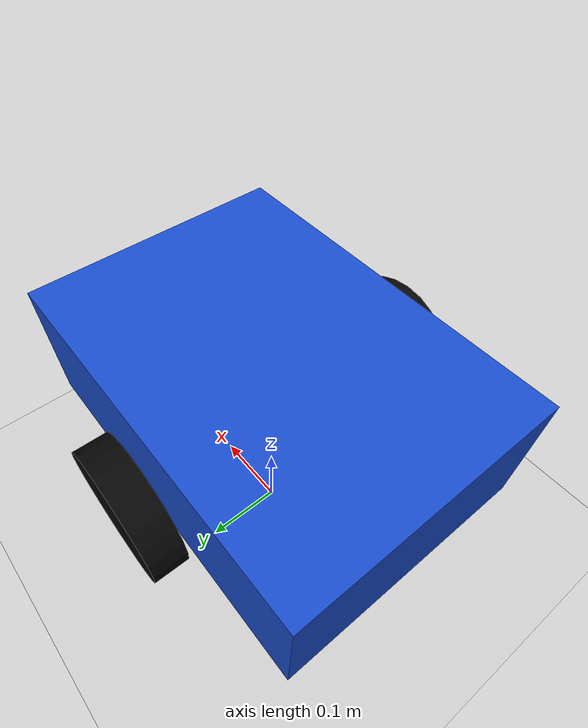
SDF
<?xml version="1.0"?>
<sdf version="1.6">
  <world name="robot_world">
    <include>
      <uri>model://sun</uri>
    </include>

    <include>
      <uri>model://ground_plane</uri>
    </include>

    <physics name="default_physics" type="ode">
      <max_step_size>0.001</max_step_size>
      <real_time_update_rate>1000</real_time_update_rate>
      <real_time_factor>1.0</real_time_factor>
    </physics>

    <gravity>0 0 -9.8</gravity>
    <magnetic_field>6.0e-6 2.3e-5 -4.2e-5</magnetic_field>
    <atmosphere type="adiabatic"/>

    <include>
      <uri>model://diff_drive_robot</uri>
      <name>diff_drive_robot</name>
      <pose>0 0 0.12 0 0 0</pose>
    </include>
  </world>
</sdf>

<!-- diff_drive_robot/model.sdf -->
<sdf version="1.6">
  <model name="diff_drive_robot">
    <static>false</static>

    <link name="base_link">
      <pose>0 0 0.12 0 0 0</pose>
      <inertial>
        <mass>5.0</mass>
        <inertia>
          <ixx>0.08</ixx>
          <ixy>0.0</ixy>
          <ixz>0.0</ixz>
          <iyy>0.10</iyy>
          <iyz>0.0</iyz>
          <izz>0.12</izz>
        </inertia>
      </inertial>
      <collision name="base_collision">
        <geometry>
          <box>
            <size>0.45 0.32 0.16</size>
          </box>
        </geometry>
      </collision>
      <visual name="base_visual">
        <geometry>
          <box>
            <size>0.45 0.32 0.16</size>
          </box>
        </geometry>
        <material>
          <ambient>0.1 0.3 0.8 1</ambient>
          <diffuse>0.1 0.3 0.8 1</diffuse>
        </material>
      </visual>
    </link>

    <link name="imu_link">
      <pose>0 0 0.23 0 0 0</pose>
      <inertial>
        <mass>0.05</mass>
        <inertia>
          <ixx>0.0001</ixx>
          <ixy>0.0</ixy>
          <ixz>0.0</ixz>
          <iyy>0.0001</iyy>
          <iyz>0.0</iyz>
          <izz>0.0001</izz>
        </inertia>
      </inertial>
      <sensor name="imu_sensor" type="imu">
        <always_on>true</always_on>
        <update_rate>100</update_rate>
        <topic>/gazebo/imu_data</topic>
        <imu>
          <angular_velocity>
            <x>
              <noise type="gaussian">
                <mean>0.0</mean>
                <stddev>0.0002</stddev>
              </noise>
            </x>
            <y>
              <noise type="gaussian">
                <mean>0.0</mean>
                <stddev>0.0002</stddev>
              </noise>
            </y>
            <z>
              <noise type="gaussian">
                <mean>0.0</mean>
                <stddev>0.0005</stddev>
              </noise>
            </z>
          </angular_velocity>
          <linear_acceleration>
            <x>
              <noise type="gaussian">
                <mean>0.0</mean>
                <stddev>0.01</stddev>
              </noise>
            </x>
            <y>
              <noise type="gaussian">
                <mean>0.0</mean>
                <stddev>0.01</stddev>
              </noise>
            </y>
            <z>
              <noise type="gaussian">
                <mean>0.0</mean>
                <stddev>0.01</stddev>
              </noise>
            </z>
          </linear_acceleration>
        </imu>
        <plugin name="imu_plugin" filename="libgazebo_ros_imu_sensor.so">
          <ros>
            <namespace>/</namespace>
            <remapping>~/out:=/gazebo/imu_data</remapping>
          </ros>
          <initial_orientation_as_reference>false</initial_orientation_as_reference>
          <frame_name>imu_link</frame_name>
        </plugin>
      </sensor>
    </link>

    <joint name="imu_joint" type="fixed">
      <parent>base_link</parent>
      <child>imu_link</child>
    </joint>

    <link name="left_wheel">
      <pose>0 0.19 0.08 1.57079632679 0 0</pose>
      <inertial>
        <mass>0.5</mass>
        <inertia>
          <ixx>0.002</ixx>
          <ixy>0.0</ixy>
          <ixz>0.0</ixz>
          <iyy>0.002</iyy>
          <iyz>0.0</iyz>
          <izz>0.003</izz>
        </inertia>
      </inertial>
      <collision name="left_wheel_collision">
        <geometry>
          <cylinder>
            <radius>0.08</radius>
            <length>0.04</length>
          </cylinder>
        </geometry>
        <surface>
          <friction>
            <ode>
              <mu>1.0</mu>
              <mu2>1.0</mu2>
            </ode>
          </friction>
        </surface>
      </collision>
      <visual name="left_wheel_visual">
        <geometry>
          <cylinder>
            <radius>0.08</radius>
            <length>0.04</length>
          </cylinder>
        </geometry>
        <material>
          <ambient>0.02 0.02 0.02 1</ambient>
          <diffuse>0.02 0.02 0.02 1</diffuse>
        </material>
      </visual>
    </link>

    <link name="right_wheel">
      <pose>0 -0.19 0.08 1.57079632679 0 0</pose>
      <inertial>
        <mass>0.5</mass>
        <inertia>
          <ixx>0.002</ixx>
          <ixy>0.0</ixy>
          <ixz>0.0</ixz>
          <iyy>0.002</iyy>
          <iyz>0.0</iyz>
          <izz>0.003</izz>
        </inertia>
      </inertial>
      <collision name="right_wheel_collision">
        <geometry>
          <cylinder>
            <radius>0.08</radius>
            <length>0.04</length>
          </cylinder>
        </geometry>
        <surface>
          <friction>
            <ode>
              <mu>1.0</mu>
              <mu2>1.0</mu2>
            </ode>
          </friction>
        </surface>
      </collision>
      <visual name="right_wheel_visual">
        <geometry>
          <cylinder>
            <radius>0.08</radius>
            <length>0.04</length>
          </cylinder>
        </geometry>
        <material>
          <ambient>0.02 0.02 0.02 1</ambient>
          <diffuse>0.02 0.02 0.02 1</diffuse>
        </material>
      </visual>
    </link>

    <link name="caster_wheel">
      <pose>-0.18 0 0.035 0 0 0</pose>
      <inertial>
        <mass>0.1</mass>
        <inertia>
          <ixx>0.0001</ixx>
          <ixy>0.0</ixy>
          <ixz>0.0</ixz>
          <iyy>0.0001</iyy>
          <iyz>0.0</iyz>
          <izz>0.0001</izz>
        </inertia>
      </inertial>
      <collision name="caster_collision">
        <geometry>
          <sphere>
            <radius>0.035</radius>
          </sphere>
        </geometry>
      </collision>
      <visual name="caster_visual">
        <geometry>
          <sphere>
            <radius>0.035</radius>
          </sphere>
        </geometry>
        <material>
          <ambient>0.1 0.1 0.1 1</ambient>
          <diffuse>0.1 0.1 0.1 1</diffuse>
        </material>
      </visual>
    </link>

    <joint name="left_wheel_joint" type="revolute">
      <parent>base_link</parent>
      <child>left_wheel</child>
      <axis>
        <xyz>0 1 0</xyz>
        <limit>
          <lower>-1e16</lower>
          <upper>1e16</upper>
        </limit>
      </axis>
    </joint>

    <joint name="right_wheel_joint" type="revolute">
      <parent>base_link</parent>
      <child>right_wheel</child>
      <axis>
        <xyz>0 1 0</xyz>
        <limit>
          <lower>-1e16</lower>
          <upper>1e16</upper>
        </limit>
      </axis>
    </joint>

    <joint name="caster_joint" type="fixed">
      <parent>base_link</parent>
      <child>caster_wheel</child>
    </joint>

    <plugin name="diff_drive_plugin" filename="libgazebo_ros_diff_drive.so">
      <ros>
        <namespace>/</namespace>
        <remapping>cmd_vel:=/cmd_vel</remapping>
        <remapping>odom:=/gazebo/odom_data</remapping>
      </ros>
      <update_rate>50</update_rate>
      <left_joint>left_wheel_joint</left_joint>
      <right_joint>right_wheel_joint</right_joint>
      <wheel_separation>0.38</wheel_separation>
      <wheel_diameter>0.16</wheel_diameter>
      <max_wheel_torque>20</max_wheel_torque>
      <max_wheel_acceleration>1.0</max_wheel_acceleration>
      <command_topic>/cmd_vel</command_topic>
      <odometry_topic>/gazebo/odom_data</odometry_topic>
      <publish_odom>true</publish_odom>
      <publish_odom_tf>true</publish_odom_tf>
      <publish_wheel_tf>true</publish_wheel_tf>
      <odometry_frame>odom</odometry_frame>
      <robot_base_frame>base_link</robot_base_frame>
    </plugin>
  </model>
</sdf>
